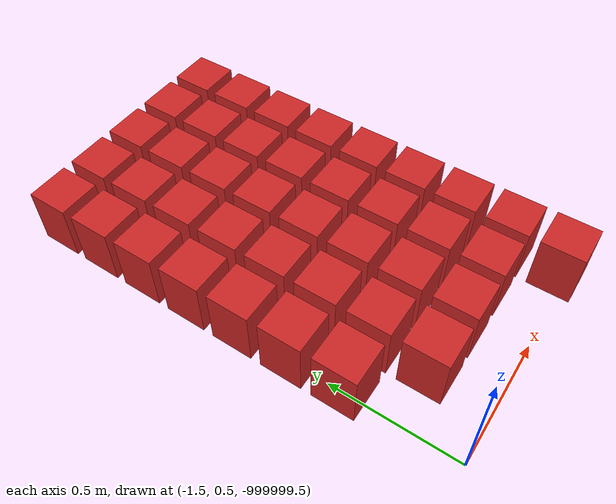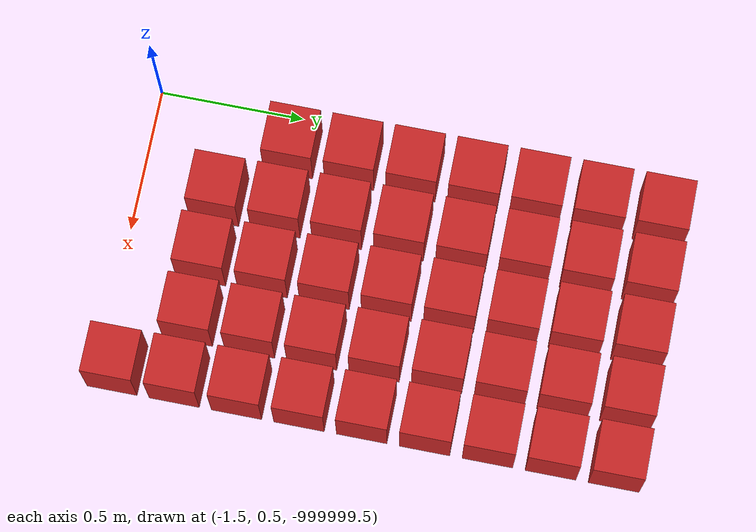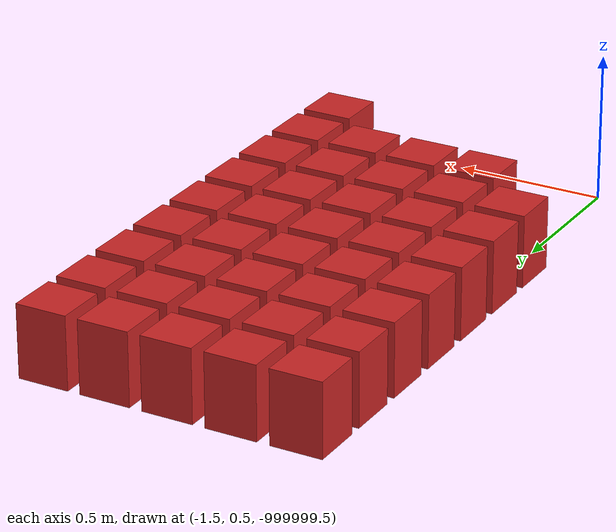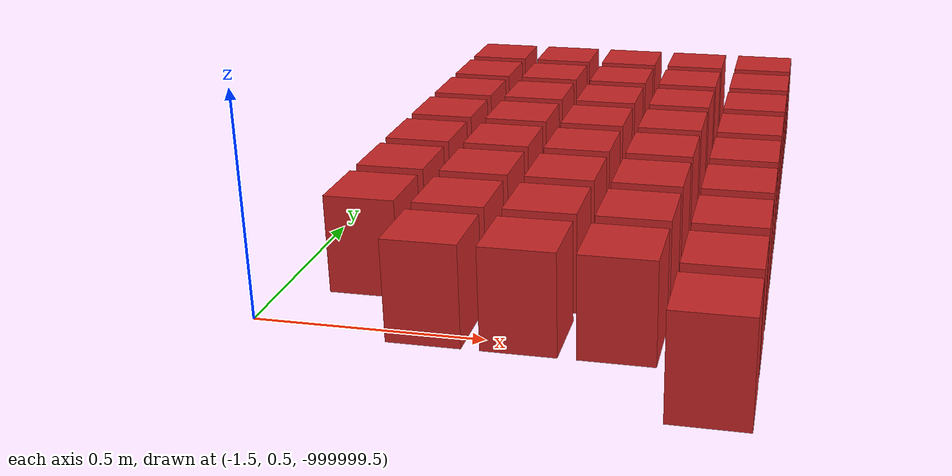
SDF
<sdf version="1.7">
 <world name="default">
  <model name="ground_plane">
   <static>1</static>
   <link name="link">
    <collision name="collision">
     <geometry><plane><normal>0 0 1</normal><size>100 100</size></plane></geometry>
     <surface>
      <contact><collide_bitmask>65535</collide_bitmask></contact>
      <friction><ode><mu>100</mu><mu2>50</mu2></ode></friction>
     </surface>
    </collision>
    <visual name="visual">
     <cast_shadows>0</cast_shadows>
     <geometry><plane><normal>0 0 1</normal><size>100 100</size></plane></geometry>
     <material>
      <script><uri>file://media/materials/scripts/gazebo.material</uri><name>Gazebo/Grey</name></script>
     </material>
    </visual>
   </link>
  </model>
  <model name="wall_331">
   <link name="link">
    <pose>0 0 0.5 0 -0 0</pose>
    <inertial>
     <mass>0.5167</mass>
     <inertia>
      <ixx>0.000861167</ixx>
      <ixy>0</ixy>
      <ixz>0</ixz>
      <iyy>0.000861167</iyy>
      <iyz>0</iyz>
      <izz>0.000861167</izz>
     </inertia>
    </inertial>
    <collision name="collision">
     <geometry><box><size>0.21 0.21 0.25</size></box></geometry>
     <surface>
      <contact>
       <poissons_ratio>0.347</poissons_ratio>
       <elastic_modulus>8.8e+09</elastic_modulus>
       <ode><kp>100000</kp><kd>100</kd><max_vel>100</max_vel><min_depth>0.001</min_depth></ode>
      </contact>
      <friction>
       <torsional>
        <coefficient>1</coefficient>
        <use_patch_radius>0</use_patch_radius>
        <surface_radius>0.01</surface_radius>
       </torsional>
      </friction>
     </surface>
    </collision>
    <visual name="visual">
     <geometry><box><size>0.175 0.175 0.25</size></box></geometry>
     <material>
      <script><uri>file://media/materials/scripts/gazebo.material</uri><name>Gazebo/Red</name></script>
     </material>
    </visual>
   </link>
   <pose>-0.543478 0.543478 -1e+06 0 -0 0</pose>
  </model>
  <model name="wall_351">
   <link name="link">
    <pose>0 0 0.5 0 -0 0</pose>
    <inertial>
     <mass>0.5167</mass>
     <inertia>
      <ixx>0.000861167</ixx>
      <ixy>0</ixy>
      <ixz>0</ixz>
      <iyy>0.000861167</iyy>
      <iyz>0</iyz>
      <izz>0.000861167</izz>
     </inertia>
    </inertial>
    <collision name="collision">
     <geometry><box><size>0.21 0.21 0.25</size></box></geometry>
     <surface>
      <contact>
       <poissons_ratio>0.347</poissons_ratio>
       <elastic_modulus>8.8e+09</elastic_modulus>
       <ode><kp>100000</kp><kd>100</kd><max_vel>100</max_vel><min_depth>0.001</min_depth></ode>
      </contact>
      <friction>
       <torsional>
        <coefficient>1</coefficient>
        <use_patch_radius>0</use_patch_radius>
        <surface_radius>0.01</surface_radius>
       </torsional>
      </friction>
     </surface>
    </collision>
    <visual name="visual">
     <geometry><box><size>0.175 0.175 0.25</size></box></geometry>
     <material>
      <script><uri>file://media/materials/scripts/gazebo.material</uri><name>Gazebo/Red</name></script>
     </material>
    </visual>
   </link>
   <pose>-1.19565 0.76087 -1e+06 0 -0 0</pose>
  </model>
  <model name="wall_352">
   <link name="link">
    <pose>0 0 0.5 0 -0 0</pose>
    <inertial>
     <mass>0.5167</mass>
     <inertia>
      <ixx>0.000861167</ixx>
      <ixy>0</ixy>
      <ixz>0</ixz>
      <iyy>0.000861167</iyy>
      <iyz>0</iyz>
      <izz>0.000861167</izz>
     </inertia>
    </inertial>
    <collision name="collision">
     <geometry><box><size>0.21 0.21 0.25</size></box></geometry>
     <surface>
      <contact>
       <poissons_ratio>0.347</poissons_ratio>
       <elastic_modulus>8.8e+09</elastic_modulus>
       <ode><kp>100000</kp><kd>100</kd><max_vel>100</max_vel><min_depth>0.001</min_depth></ode>
      </contact>
      <friction>
       <torsional>
        <coefficient>1</coefficient>
        <use_patch_radius>0</use_patch_radius>
        <surface_radius>0.01</surface_radius>
       </torsional>
      </friction>
     </surface>
    </collision>
    <visual name="visual">
     <geometry><box><size>0.175 0.175 0.25</size></box></geometry>
     <material>
      <script><uri>file://media/materials/scripts/gazebo.material</uri><name>Gazebo/Red</name></script>
     </material>
    </visual>
   </link>
   <pose>-0.978261 0.76087 -1e+06 0 -0 0</pose>
  </model>
  <model name="wall_353">
   <link name="link">
    <pose>0 0 0.5 0 -0 0</pose>
    <inertial>
     <mass>0.5167</mass>
     <inertia>
      <ixx>0.000861167</ixx>
      <ixy>0</ixy>
      <ixz>0</ixz>
      <iyy>0.000861167</iyy>
      <iyz>0</iyz>
      <izz>0.000861167</izz>
     </inertia>
    </inertial>
    <collision name="collision">
     <geometry><box><size>0.21 0.21 0.25</size></box></geometry>
     <surface>
      <contact>
       <poissons_ratio>0.347</poissons_ratio>
       <elastic_modulus>8.8e+09</elastic_modulus>
       <ode><kp>100000</kp><kd>100</kd><max_vel>100</max_vel><min_depth>0.001</min_depth></ode>
      </contact>
      <friction>
       <torsional>
        <coefficient>1</coefficient>
        <use_patch_radius>0</use_patch_radius>
        <surface_radius>0.01</surface_radius>
       </torsional>
      </friction>
     </surface>
    </collision>
    <visual name="visual">
     <geometry><box><size>0.175 0.175 0.25</size></box></geometry>
     <material>
      <script><uri>file://media/materials/scripts/gazebo.material</uri><name>Gazebo/Red</name></script>
     </material>
    </visual>
   </link>
   <pose>-0.76087 0.76087 -1e+06 0 -0 0</pose>
  </model>
  <model name="wall_354">
   <link name="link">
    <pose>0 0 0.5 0 -0 0</pose>
    <inertial>
     <mass>0.5167</mass>
     <inertia>
      <ixx>0.000861167</ixx>
      <ixy>0</ixy>
      <ixz>0</ixz>
      <iyy>0.000861167</iyy>
      <iyz>0</iyz>
      <izz>0.000861167</izz>
     </inertia>
    </inertial>
    <collision name="collision">
     <geometry><box><size>0.21 0.21 0.25</size></box></geometry>
     <surface>
      <contact>
       <poissons_ratio>0.347</poissons_ratio>
       <elastic_modulus>8.8e+09</elastic_modulus>
       <ode><kp>100000</kp><kd>100</kd><max_vel>100</max_vel><min_depth>0.001</min_depth></ode>
      </contact>
      <friction>
       <torsional>
        <coefficient>1</coefficient>
        <use_patch_radius>0</use_patch_radius>
        <surface_radius>0.01</surface_radius>
       </torsional>
      </friction>
     </surface>
    </collision>
    <visual name="visual">
     <geometry><box><size>0.175 0.175 0.25</size></box></geometry>
     <material>
      <script><uri>file://media/materials/scripts/gazebo.material</uri><name>Gazebo/Red</name></script>
     </material>
    </visual>
   </link>
   <pose>-0.543478 0.76087 -1e+06 0 -0 0</pose>
  </model>
  <model name="wall_373">
   <link name="link">
    <pose>0 0 0.5 0 -0 0</pose>
    <inertial>
     <mass>0.5167</mass>
     <inertia>
      <ixx>0.000861167</ixx>
      <ixy>0</ixy>
      <ixz>0</ixz>
      <iyy>0.000861167</iyy>
      <iyz>0</iyz>
      <izz>0.000861167</izz>
     </inertia>
    </inertial>
    <collision name="collision">
     <geometry><box><size>0.21 0.21 0.25</size></box></geometry>
     <surface>
      <contact>
       <poissons_ratio>0.347</poissons_ratio>
       <elastic_modulus>8.8e+09</elastic_modulus>
       <ode><kp>100000</kp><kd>100</kd><max_vel>100</max_vel><min_depth>0.001</min_depth></ode>
      </contact>
      <friction>
       <torsional>
        <coefficient>1</coefficient>
        <use_patch_radius>0</use_patch_radius>
        <surface_radius>0.01</surface_radius>
       </torsional>
      </friction>
     </surface>
    </collision>
    <visual name="visual">
     <geometry><box><size>0.175 0.175 0.25</size></box></geometry>
     <material>
      <script><uri>file://media/materials/scripts/gazebo.material</uri><name>Gazebo/Red</name></script>
     </material>
    </visual>
   </link>
   <pose>-1.41304 0.978261 -1e+06 0 -0 0</pose>
  </model>
  <model name="wall_374">
   <link name="link">
    <pose>0 0 0.5 0 -0 0</pose>
    <inertial>
     <mass>0.5167</mass>
     <inertia>
      <ixx>0.000861167</ixx>
      <ixy>0</ixy>
      <ixz>0</ixz>
      <iyy>0.000861167</iyy>
      <iyz>0</iyz>
      <izz>0.000861167</izz>
     </inertia>
    </inertial>
    <collision name="collision">
     <geometry><box><size>0.21 0.21 0.25</size></box></geometry>
     <surface>
      <contact>
       <poissons_ratio>0.347</poissons_ratio>
       <elastic_modulus>8.8e+09</elastic_modulus>
       <ode><kp>100000</kp><kd>100</kd><max_vel>100</max_vel><min_depth>0.001</min_depth></ode>
      </contact>
      <friction>
       <torsional>
        <coefficient>1</coefficient>
        <use_patch_radius>0</use_patch_radius>
        <surface_radius>0.01</surface_radius>
       </torsional>
      </friction>
     </surface>
    </collision>
    <visual name="visual">
     <geometry><box><size>0.175 0.175 0.25</size></box></geometry>
     <material>
      <script><uri>file://media/materials/scripts/gazebo.material</uri><name>Gazebo/Red</name></script>
     </material>
    </visual>
   </link>
   <pose>-1.19565 0.978261 -1e+06 0 -0 0</pose>
  </model>
  <model name="wall_375">
   <link name="link">
    <pose>0 0 0.5 0 -0 0</pose>
    <inertial>
     <mass>0.5167</mass>
     <inertia>
      <ixx>0.000861167</ixx>
      <ixy>0</ixy>
      <ixz>0</ixz>
      <iyy>0.000861167</iyy>
      <iyz>0</iyz>
      <izz>0.000861167</izz>
     </inertia>
    </inertial>
    <collision name="collision">
     <geometry><box><size>0.21 0.21 0.25</size></box></geometry>
     <surface>
      <contact>
       <poissons_ratio>0.347</poissons_ratio>
       <elastic_modulus>8.8e+09</elastic_modulus>
       <ode><kp>100000</kp><kd>100</kd><max_vel>100</max_vel><min_depth>0.001</min_depth></ode>
      </contact>
      <friction>
       <torsional>
        <coefficient>1</coefficient>
        <use_patch_radius>0</use_patch_radius>
        <surface_radius>0.01</surface_radius>
       </torsional>
      </friction>
     </surface>
    </collision>
    <visual name="visual">
     <geometry><box><size>0.175 0.175 0.25</size></box></geometry>
     <material>
      <script><uri>file://media/materials/scripts/gazebo.material</uri><name>Gazebo/Red</name></script>
     </material>
    </visual>
   </link>
   <pose>-0.978261 0.978261 -1e+06 0 -0 0</pose>
  </model>
  <model name="wall_376">
   <link name="link">
    <pose>0 0 0.5 0 -0 0</pose>
    <inertial>
     <mass>0.5167</mass>
     <inertia>
      <ixx>0.000861167</ixx>
      <ixy>0</ixy>
      <ixz>0</ixz>
      <iyy>0.000861167</iyy>
      <iyz>0</iyz>
      <izz>0.000861167</izz>
     </inertia>
    </inertial>
    <collision name="collision">
     <geometry><box><size>0.21 0.21 0.25</size></box></geometry>
     <surface>
      <contact>
       <poissons_ratio>0.347</poissons_ratio>
       <elastic_modulus>8.8e+09</elastic_modulus>
       <ode><kp>100000</kp><kd>100</kd><max_vel>100</max_vel><min_depth>0.001</min_depth></ode>
      </contact>
      <friction>
       <torsional>
        <coefficient>1</coefficient>
        <use_patch_radius>0</use_patch_radius>
        <surface_radius>0.01</surface_radius>
       </torsional>
      </friction>
     </surface>
    </collision>
    <visual name="visual">
     <geometry><box><size>0.175 0.175 0.25</size></box></geometry>
     <material>
      <script><uri>file://media/materials/scripts/gazebo.material</uri><name>Gazebo/Red</name></script>
     </material>
    </visual>
   </link>
   <pose>-0.76087 0.978261 -1e+06 0 -0 0</pose>
  </model>
  <model name="wall_377">
   <link name="link">
    <pose>0 0 0.5 0 -0 0</pose>
    <inertial>
     <mass>0.5167</mass>
     <inertia>
      <ixx>0.000861167</ixx>
      <ixy>0</ixy>
      <ixz>0</ixz>
      <iyy>0.000861167</iyy>
      <iyz>0</iyz>
      <izz>0.000861167</izz>
     </inertia>
    </inertial>
    <collision name="collision">
     <geometry><box><size>0.21 0.21 0.25</size></box></geometry>
     <surface>
      <contact>
       <poissons_ratio>0.347</poissons_ratio>
       <elastic_modulus>8.8e+09</elastic_modulus>
       <ode><kp>100000</kp><kd>100</kd><max_vel>100</max_vel><min_depth>0.001</min_depth></ode>
      </contact>
      <friction>
       <torsional>
        <coefficient>1</coefficient>
        <use_patch_radius>0</use_patch_radius>
        <surface_radius>0.01</surface_radius>
       </torsional>
      </friction>
     </surface>
    </collision>
    <visual name="visual">
     <geometry><box><size>0.175 0.175 0.25</size></box></geometry>
     <material>
      <script><uri>file://media/materials/scripts/gazebo.material</uri><name>Gazebo/Red</name></script>
     </material>
    </visual>
   </link>
   <pose>-0.543478 0.978261 -1e+06 0 -0 0</pose>
  </model>
  <model name="wall_396">
   <link name="link">
    <pose>0 0 0.5 0 -0 0</pose>
    <inertial>
     <mass>0.5167</mass>
     <inertia>
      <ixx>0.000861167</ixx>
      <ixy>0</ixy>
      <ixz>0</ixz>
      <iyy>0.000861167</iyy>
      <iyz>0</iyz>
      <izz>0.000861167</izz>
     </inertia>
    </inertial>
    <collision name="collision">
     <geometry><box><size>0.21 0.21 0.25</size></box></geometry>
     <surface>
      <contact>
       <poissons_ratio>0.347</poissons_ratio>
       <elastic_modulus>8.8e+09</elastic_modulus>
       <ode><kp>100000</kp><kd>100</kd><max_vel>100</max_vel><min_depth>0.001</min_depth></ode>
      </contact>
      <friction>
       <torsional>
        <coefficient>1</coefficient>
        <use_patch_radius>0</use_patch_radius>
        <surface_radius>0.01</surface_radius>
       </torsional>
      </friction>
     </surface>
    </collision>
    <visual name="visual">
     <geometry><box><size>0.175 0.175 0.25</size></box></geometry>
     <material>
      <script><uri>file://media/materials/scripts/gazebo.material</uri><name>Gazebo/Red</name></script>
     </material>
    </visual>
   </link>
   <pose>-1.41304 1.19565 -1e+06 0 -0 0</pose>
  </model>
  <model name="wall_397">
   <link name="link">
    <pose>0 0 0.5 0 -0 0</pose>
    <inertial>
     <mass>0.5167</mass>
     <inertia>
      <ixx>0.000861167</ixx>
      <ixy>0</ixy>
      <ixz>0</ixz>
      <iyy>0.000861167</iyy>
      <iyz>0</iyz>
      <izz>0.000861167</izz>
     </inertia>
    </inertial>
    <collision name="collision">
     <geometry><box><size>0.21 0.21 0.25</size></box></geometry>
     <surface>
      <contact>
       <poissons_ratio>0.347</poissons_ratio>
       <elastic_modulus>8.8e+09</elastic_modulus>
       <ode><kp>100000</kp><kd>100</kd><max_vel>100</max_vel><min_depth>0.001</min_depth></ode>
      </contact>
      <friction>
       <torsional>
        <coefficient>1</coefficient>
        <use_patch_radius>0</use_patch_radius>
        <surface_radius>0.01</surface_radius>
       </torsional>
      </friction>
     </surface>
    </collision>
    <visual name="visual">
     <geometry><box><size>0.175 0.175 0.25</size></box></geometry>
     <material>
      <script><uri>file://media/materials/scripts/gazebo.material</uri><name>Gazebo/Red</name></script>
     </material>
    </visual>
   </link>
   <pose>-1.19565 1.19565 -1e+06 0 -0 0</pose>
  </model>
  <model name="wall_398">
   <link name="link">
    <pose>0 0 0.5 0 -0 0</pose>
    <inertial>
     <mass>0.5167</mass>
     <inertia>
      <ixx>0.000861167</ixx>
      <ixy>0</ixy>
      <ixz>0</ixz>
      <iyy>0.000861167</iyy>
      <iyz>0</iyz>
      <izz>0.000861167</izz>
     </inertia>
    </inertial>
    <collision name="collision">
     <geometry><box><size>0.21 0.21 0.25</size></box></geometry>
     <surface>
      <contact>
       <poissons_ratio>0.347</poissons_ratio>
       <elastic_modulus>8.8e+09</elastic_modulus>
       <ode><kp>100000</kp><kd>100</kd><max_vel>100</max_vel><min_depth>0.001</min_depth></ode>
      </contact>
      <friction>
       <torsional>
        <coefficient>1</coefficient>
        <use_patch_radius>0</use_patch_radius>
        <surface_radius>0.01</surface_radius>
       </torsional>
      </friction>
     </surface>
    </collision>
    <visual name="visual">
     <geometry><box><size>0.175 0.175 0.25</size></box></geometry>
     <material>
      <script><uri>file://media/materials/scripts/gazebo.material</uri><name>Gazebo/Red</name></script>
     </material>
    </visual>
   </link>
   <pose>-0.978261 1.19565 -1e+06 0 -0 0</pose>
  </model>
  <model name="wall_399">
   <link name="link">
    <pose>0 0 0.5 0 -0 0</pose>
    <inertial>
     <mass>0.5167</mass>
     <inertia>
      <ixx>0.000861167</ixx>
      <ixy>0</ixy>
      <ixz>0</ixz>
      <iyy>0.000861167</iyy>
      <iyz>0</iyz>
      <izz>0.000861167</izz>
     </inertia>
    </inertial>
    <collision name="collision">
     <geometry><box><size>0.21 0.21 0.25</size></box></geometry>
     <surface>
      <contact>
       <poissons_ratio>0.347</poissons_ratio>
       <elastic_modulus>8.8e+09</elastic_modulus>
       <ode><kp>100000</kp><kd>100</kd><max_vel>100</max_vel><min_depth>0.001</min_depth></ode>
      </contact>
      <friction>
       <torsional>
        <coefficient>1</coefficient>
        <use_patch_radius>0</use_patch_radius>
        <surface_radius>0.01</surface_radius>
       </torsional>
      </friction>
     </surface>
    </collision>
    <visual name="visual">
     <geometry><box><size>0.175 0.175 0.25</size></box></geometry>
     <material>
      <script><uri>file://media/materials/scripts/gazebo.material</uri><name>Gazebo/Red</name></script>
     </material>
    </visual>
   </link>
   <pose>-0.76087 1.19565 -1e+06 0 -0 0</pose>
  </model>
  <model name="wall_400">
   <link name="link">
    <pose>0 0 0.5 0 -0 0</pose>
    <inertial>
     <mass>0.5167</mass>
     <inertia>
      <ixx>0.000861167</ixx>
      <ixy>0</ixy>
      <ixz>0</ixz>
      <iyy>0.000861167</iyy>
      <iyz>0</iyz>
      <izz>0.000861167</izz>
     </inertia>
    </inertial>
    <collision name="collision">
     <geometry><box><size>0.21 0.21 0.25</size></box></geometry>
     <surface>
      <contact>
       <poissons_ratio>0.347</poissons_ratio>
       <elastic_modulus>8.8e+09</elastic_modulus>
       <ode><kp>100000</kp><kd>100</kd><max_vel>100</max_vel><min_depth>0.001</min_depth></ode>
      </contact>
      <friction>
       <torsional>
        <coefficient>1</coefficient>
        <use_patch_radius>0</use_patch_radius>
        <surface_radius>0.01</surface_radius>
       </torsional>
      </friction>
     </surface>
    </collision>
    <visual name="visual">
     <geometry><box><size>0.175 0.175 0.25</size></box></geometry>
     <material>
      <script><uri>file://media/materials/scripts/gazebo.material</uri><name>Gazebo/Red</name></script>
     </material>
    </visual>
   </link>
   <pose>-0.543478 1.19565 -1e+06 0 -0 0</pose>
  </model>
  <model name="wall_419">
   <link name="link">
    <pose>0 0 0.5 0 -0 0</pose>
    <inertial>
     <mass>0.5167</mass>
     <inertia>
      <ixx>0.000861167</ixx>
      <ixy>0</ixy>
      <ixz>0</ixz>
      <iyy>0.000861167</iyy>
      <iyz>0</iyz>
      <izz>0.000861167</izz>
     </inertia>
    </inertial>
    <collision name="collision">
     <geometry><box><size>0.21 0.21 0.25</size></box></geometry>
     <surface>
      <contact>
       <poissons_ratio>0.347</poissons_ratio>
       <elastic_modulus>8.8e+09</elastic_modulus>
       <ode><kp>100000</kp><kd>100</kd><max_vel>100</max_vel><min_depth>0.001</min_depth></ode>
      </contact>
      <friction>
       <torsional>
        <coefficient>1</coefficient>
        <use_patch_radius>0</use_patch_radius>
        <surface_radius>0.01</surface_radius>
       </torsional>
      </friction>
     </surface>
    </collision>
    <visual name="visual">
     <geometry><box><size>0.175 0.175 0.25</size></box></geometry>
     <material>
      <script><uri>file://media/materials/scripts/gazebo.material</uri><name>Gazebo/Red</name></script>
     </material>
    </visual>
   </link>
   <pose>-1.41304 1.41304 -1e+06 0 -0 0</pose>
  </model>
  <model name="wall_420">
   <link name="link">
    <pose>0 0 0.5 0 -0 0</pose>
    <inertial>
     <mass>0.5167</mass>
     <inertia>
      <ixx>0.000861167</ixx>
      <ixy>0</ixy>
      <ixz>0</ixz>
      <iyy>0.000861167</iyy>
      <iyz>0</iyz>
      <izz>0.000861167</izz>
     </inertia>
    </inertial>
    <collision name="collision">
     <geometry><box><size>0.21 0.21 0.25</size></box></geometry>
     <surface>
      <contact>
       <poissons_ratio>0.347</poissons_ratio>
       <elastic_modulus>8.8e+09</elastic_modulus>
       <ode><kp>100000</kp><kd>100</kd><max_vel>100</max_vel><min_depth>0.001</min_depth></ode>
      </contact>
      <friction>
       <torsional>
        <coefficient>1</coefficient>
        <use_patch_radius>0</use_patch_radius>
        <surface_radius>0.01</surface_radius>
       </torsional>
      </friction>
     </surface>
    </collision>
    <visual name="visual">
     <geometry><box><size>0.175 0.175 0.25</size></box></geometry>
     <material>
      <script><uri>file://media/materials/scripts/gazebo.material</uri><name>Gazebo/Red</name></script>
     </material>
    </visual>
   </link>
   <pose>-1.19565 1.41304 -1e+06 0 -0 0</pose>
  </model>
  <model name="wall_421">
   <link name="link">
    <pose>0 0 0.5 0 -0 0</pose>
    <inertial>
     <mass>0.5167</mass>
     <inertia>
      <ixx>0.000861167</ixx>
      <ixy>0</ixy>
      <ixz>0</ixz>
      <iyy>0.000861167</iyy>
      <iyz>0</iyz>
      <izz>0.000861167</izz>
     </inertia>
    </inertial>
    <collision name="collision">
     <geometry><box><size>0.21 0.21 0.25</size></box></geometry>
     <surface>
      <contact>
       <poissons_ratio>0.347</poissons_ratio>
       <elastic_modulus>8.8e+09</elastic_modulus>
       <ode><kp>100000</kp><kd>100</kd><max_vel>100</max_vel><min_depth>0.001</min_depth></ode>
      </contact>
      <friction>
       <torsional>
        <coefficient>1</coefficient>
        <use_patch_radius>0</use_patch_radius>
        <surface_radius>0.01</surface_radius>
       </torsional>
      </friction>
     </surface>
    </collision>
    <visual name="visual">
     <geometry><box><size>0.175 0.175 0.25</size></box></geometry>
     <material>
      <script><uri>file://media/materials/scripts/gazebo.material</uri><name>Gazebo/Red</name></script>
     </material>
    </visual>
   </link>
   <pose>-0.978261 1.41304 -1e+06 0 -0 0</pose>
  </model>
  <model name="wall_422">
   <link name="link">
    <pose>0 0 0.5 0 -0 0</pose>
    <inertial>
     <mass>0.5167</mass>
     <inertia>
      <ixx>0.000861167</ixx>
      <ixy>0</ixy>
      <ixz>0</ixz>
      <iyy>0.000861167</iyy>
      <iyz>0</iyz>
      <izz>0.000861167</izz>
     </inertia>
    </inertial>
    <collision name="collision">
     <geometry><box><size>0.21 0.21 0.25</size></box></geometry>
     <surface>
      <contact>
       <poissons_ratio>0.347</poissons_ratio>
       <elastic_modulus>8.8e+09</elastic_modulus>
       <ode><kp>100000</kp><kd>100</kd><max_vel>100</max_vel><min_depth>0.001</min_depth></ode>
      </contact>
      <friction>
       <torsional>
        <coefficient>1</coefficient>
        <use_patch_radius>0</use_patch_radius>
        <surface_radius>0.01</surface_radius>
       </torsional>
      </friction>
     </surface>
    </collision>
    <visual name="visual">
     <geometry><box><size>0.175 0.175 0.25</size></box></geometry>
     <material>
      <script><uri>file://media/materials/scripts/gazebo.material</uri><name>Gazebo/Red</name></script>
     </material>
    </visual>
   </link>
   <pose>-0.76087 1.41304 -1e+06 0 -0 0</pose>
  </model>
  <model name="wall_423">
   <link name="link">
    <pose>0 0 0.5 0 -0 0</pose>
    <inertial>
     <mass>0.5167</mass>
     <inertia>
      <ixx>0.000861167</ixx>
      <ixy>0</ixy>
      <ixz>0</ixz>
      <iyy>0.000861167</iyy>
      <iyz>0</iyz>
      <izz>0.000861167</izz>
     </inertia>
    </inertial>
    <collision name="collision">
     <geometry><box><size>0.21 0.21 0.25</size></box></geometry>
     <surface>
      <contact>
       <poissons_ratio>0.347</poissons_ratio>
       <elastic_modulus>8.8e+09</elastic_modulus>
       <ode><kp>100000</kp><kd>100</kd><max_vel>100</max_vel><min_depth>0.001</min_depth></ode>
      </contact>
      <friction>
       <torsional>
        <coefficient>1</coefficient>
        <use_patch_radius>0</use_patch_radius>
        <surface_radius>0.01</surface_radius>
       </torsional>
      </friction>
     </surface>
    </collision>
    <visual name="visual">
     <geometry><box><size>0.175 0.175 0.25</size></box></geometry>
     <material>
      <script><uri>file://media/materials/scripts/gazebo.material</uri><name>Gazebo/Red</name></script>
     </material>
    </visual>
   </link>
   <pose>-0.543478 1.41304 -1e+06 0 -0 0</pose>
  </model>
  <model name="wall_442">
   <link name="link">
    <pose>0 0 0.5 0 -0 0</pose>
    <inertial>
     <mass>0.5167</mass>
     <inertia>
      <ixx>0.000861167</ixx>
      <ixy>0</ixy>
      <ixz>0</ixz>
      <iyy>0.000861167</iyy>
      <iyz>0</iyz>
      <izz>0.000861167</izz>
     </inertia>
    </inertial>
    <collision name="collision">
     <geometry><box><size>0.21 0.21 0.25</size></box></geometry>
     <surface>
      <contact>
       <poissons_ratio>0.347</poissons_ratio>
       <elastic_modulus>8.8e+09</elastic_modulus>
       <ode><kp>100000</kp><kd>100</kd><max_vel>100</max_vel><min_depth>0.001</min_depth></ode>
      </contact>
      <friction>
       <torsional>
        <coefficient>1</coefficient>
        <use_patch_radius>0</use_patch_radius>
        <surface_radius>0.01</surface_radius>
       </torsional>
      </friction>
     </surface>
    </collision>
    <visual name="visual">
     <geometry><box><size>0.175 0.175 0.25</size></box></geometry>
     <material>
      <script><uri>file://media/materials/scripts/gazebo.material</uri><name>Gazebo/Red</name></script>
     </material>
    </visual>
   </link>
   <pose>-1.41304 1.63043 -1e+06 0 -0 0</pose>
  </model>
  <model name="wall_443">
   <link name="link">
    <pose>0 0 0.5 0 -0 0</pose>
    <inertial>
     <mass>0.5167</mass>
     <inertia>
      <ixx>0.000861167</ixx>
      <ixy>0</ixy>
      <ixz>0</ixz>
      <iyy>0.000861167</iyy>
      <iyz>0</iyz>
      <izz>0.000861167</izz>
     </inertia>
    </inertial>
    <collision name="collision">
     <geometry><box><size>0.21 0.21 0.25</size></box></geometry>
     <surface>
      <contact>
       <poissons_ratio>0.347</poissons_ratio>
       <elastic_modulus>8.8e+09</elastic_modulus>
       <ode><kp>100000</kp><kd>100</kd><max_vel>100</max_vel><min_depth>0.001</min_depth></ode>
      </contact>
      <friction>
       <torsional>
        <coefficient>1</coefficient>
        <use_patch_radius>0</use_patch_radius>
        <surface_radius>0.01</surface_radius>
       </torsional>
      </friction>
     </surface>
    </collision>
    <visual name="visual">
     <geometry><box><size>0.175 0.175 0.25</size></box></geometry>
     <material>
      <script><uri>file://media/materials/scripts/gazebo.material</uri><name>Gazebo/Red</name></script>
     </material>
    </visual>
   </link>
   <pose>-1.19565 1.63043 -1e+06 0 -0 0</pose>
  </model>
  <model name="wall_444">
   <link name="link">
    <pose>0 0 0.5 0 -0 0</pose>
    <inertial>
     <mass>0.5167</mass>
     <inertia>
      <ixx>0.000861167</ixx>
      <ixy>0</ixy>
      <ixz>0</ixz>
      <iyy>0.000861167</iyy>
      <iyz>0</iyz>
      <izz>0.000861167</izz>
     </inertia>
    </inertial>
    <collision name="collision">
     <geometry><box><size>0.21 0.21 0.25</size></box></geometry>
     <surface>
      <contact>
       <poissons_ratio>0.347</poissons_ratio>
       <elastic_modulus>8.8e+09</elastic_modulus>
       <ode><kp>100000</kp><kd>100</kd><max_vel>100</max_vel><min_depth>0.001</min_depth></ode>
      </contact>
      <friction>
       <torsional>
        <coefficient>1</coefficient>
        <use_patch_radius>0</use_patch_radius>
        <surface_radius>0.01</surface_radius>
       </torsional>
      </friction>
     </surface>
    </collision>
    <visual name="visual">
     <geometry><box><size>0.175 0.175 0.25</size></box></geometry>
     <material>
      <script><uri>file://media/materials/scripts/gazebo.material</uri><name>Gazebo/Red</name></script>
     </material>
    </visual>
   </link>
   <pose>-0.978261 1.63043 -1e+06 0 -0 0</pose>
  </model>
  <model name="wall_445">
   <link name="link">
    <pose>0 0 0.5 0 -0 0</pose>
    <inertial>
     <mass>0.5167</mass>
     <inertia>
      <ixx>0.000861167</ixx>
      <ixy>0</ixy>
      <ixz>0</ixz>
      <iyy>0.000861167</iyy>
      <iyz>0</iyz>
      <izz>0.000861167</izz>
     </inertia>
    </inertial>
    <collision name="collision">
     <geometry><box><size>0.21 0.21 0.25</size></box></geometry>
     <surface>
      <contact>
       <poissons_ratio>0.347</poissons_ratio>
       <elastic_modulus>8.8e+09</elastic_modulus>
       <ode><kp>100000</kp><kd>100</kd><max_vel>100</max_vel><min_depth>0.001</min_depth></ode>
      </contact>
      <friction>
       <torsional>
        <coefficient>1</coefficient>
        <use_patch_radius>0</use_patch_radius>
        <surface_radius>0.01</surface_radius>
       </torsional>
      </friction>
     </surface>
    </collision>
    <visual name="visual">
     <geometry><box><size>0.175 0.175 0.25</size></box></geometry>
     <material>
      <script><uri>file://media/materials/scripts/gazebo.material</uri><name>Gazebo/Red</name></script>
     </material>
    </visual>
   </link>
   <pose>-0.76087 1.63043 -1e+06 0 -0 0</pose>
  </model>
  <model name="wall_446">
   <link name="link">
    <pose>0 0 0.5 0 -0 0</pose>
    <inertial>
     <mass>0.5167</mass>
     <inertia>
      <ixx>0.000861167</ixx>
      <ixy>0</ixy>
      <ixz>0</ixz>
      <iyy>0.000861167</iyy>
      <iyz>0</iyz>
      <izz>0.000861167</izz>
     </inertia>
    </inertial>
    <collision name="collision">
     <geometry><box><size>0.21 0.21 0.25</size></box></geometry>
     <surface>
      <contact>
       <poissons_ratio>0.347</poissons_ratio>
       <elastic_modulus>8.8e+09</elastic_modulus>
       <ode><kp>100000</kp><kd>100</kd><max_vel>100</max_vel><min_depth>0.001</min_depth></ode>
      </contact>
      <friction>
       <torsional>
        <coefficient>1</coefficient>
        <use_patch_radius>0</use_patch_radius>
        <surface_radius>0.01</surface_radius>
       </torsional>
      </friction>
     </surface>
    </collision>
    <visual name="visual">
     <geometry><box><size>0.175 0.175 0.25</size></box></geometry>
     <material>
      <script><uri>file://media/materials/scripts/gazebo.material</uri><name>Gazebo/Red</name></script>
     </material>
    </visual>
   </link>
   <pose>-0.543478 1.63043 -1e+06 0 -0 0</pose>
  </model>
  <model name="wall_465">
   <link name="link">
    <pose>0 0 0.5 0 -0 0</pose>
    <inertial>
     <mass>0.5167</mass>
     <inertia>
      <ixx>0.000861167</ixx>
      <ixy>0</ixy>
      <ixz>0</ixz>
      <iyy>0.000861167</iyy>
      <iyz>0</iyz>
      <izz>0.000861167</izz>
     </inertia>
    </inertial>
    <collision name="collision">
     <geometry><box><size>0.21 0.21 0.25</size></box></geometry>
     <surface>
      <contact>
       <poissons_ratio>0.347</poissons_ratio>
       <elastic_modulus>8.8e+09</elastic_modulus>
       <ode><kp>100000</kp><kd>100</kd><max_vel>100</max_vel><min_depth>0.001</min_depth></ode>
      </contact>
      <friction>
       <torsional>
        <coefficient>1</coefficient>
        <use_patch_radius>0</use_patch_radius>
        <surface_radius>0.01</surface_radius>
       </torsional>
      </friction>
     </surface>
    </collision>
    <visual name="visual">
     <geometry><box><size>0.175 0.175 0.25</size></box></geometry>
     <material>
      <script><uri>file://media/materials/scripts/gazebo.material</uri><name>Gazebo/Red</name></script>
     </material>
    </visual>
   </link>
   <pose>-1.41304 1.84783 -1e+06 0 -0 0</pose>
  </model>
  <model name="wall_466">
   <link name="link">
    <pose>0 0 0.5 0 -0 0</pose>
    <inertial>
     <mass>0.5167</mass>
     <inertia>
      <ixx>0.000861167</ixx>
      <ixy>0</ixy>
      <ixz>0</ixz>
      <iyy>0.000861167</iyy>
      <iyz>0</iyz>
      <izz>0.000861167</izz>
     </inertia>
    </inertial>
    <collision name="collision">
     <geometry><box><size>0.21 0.21 0.25</size></box></geometry>
     <surface>
      <contact>
       <poissons_ratio>0.347</poissons_ratio>
       <elastic_modulus>8.8e+09</elastic_modulus>
       <ode><kp>100000</kp><kd>100</kd><max_vel>100</max_vel><min_depth>0.001</min_depth></ode>
      </contact>
      <friction>
       <torsional>
        <coefficient>1</coefficient>
        <use_patch_radius>0</use_patch_radius>
        <surface_radius>0.01</surface_radius>
       </torsional>
      </friction>
     </surface>
    </collision>
    <visual name="visual">
     <geometry><box><size>0.175 0.175 0.25</size></box></geometry>
     <material>
      <script><uri>file://media/materials/scripts/gazebo.material</uri><name>Gazebo/Red</name></script>
     </material>
    </visual>
   </link>
   <pose>-1.19565 1.84783 -1e+06 0 -0 0</pose>
  </model>
  <model name="wall_467">
   <link name="link">
    <pose>0 0 0.5 0 -0 0</pose>
    <inertial>
     <mass>0.5167</mass>
     <inertia>
      <ixx>0.000861167</ixx>
      <ixy>0</ixy>
      <ixz>0</ixz>
      <iyy>0.000861167</iyy>
      <iyz>0</iyz>
      <izz>0.000861167</izz>
     </inertia>
    </inertial>
    <collision name="collision">
     <geometry><box><size>0.21 0.21 0.25</size></box></geometry>
     <surface>
      <contact>
       <poissons_ratio>0.347</poissons_ratio>
       <elastic_modulus>8.8e+09</elastic_modulus>
       <ode><kp>100000</kp><kd>100</kd><max_vel>100</max_vel><min_depth>0.001</min_depth></ode>
      </contact>
      <friction>
       <torsional>
        <coefficient>1</coefficient>
        <use_patch_radius>0</use_patch_radius>
        <surface_radius>0.01</surface_radius>
       </torsional>
      </friction>
     </surface>
    </collision>
    <visual name="visual">
     <geometry><box><size>0.175 0.175 0.25</size></box></geometry>
     <material>
      <script><uri>file://media/materials/scripts/gazebo.material</uri><name>Gazebo/Red</name></script>
     </material>
    </visual>
   </link>
   <pose>-0.978261 1.84783 -1e+06 0 -0 0</pose>
  </model>
  <model name="wall_468">
   <link name="link">
    <pose>0 0 0.5 0 -0 0</pose>
    <inertial>
     <mass>0.5167</mass>
     <inertia>
      <ixx>0.000861167</ixx>
      <ixy>0</ixy>
      <ixz>0</ixz>
      <iyy>0.000861167</iyy>
      <iyz>0</iyz>
      <izz>0.000861167</izz>
     </inertia>
    </inertial>
    <collision name="collision">
     <geometry><box><size>0.21 0.21 0.25</size></box></geometry>
     <surface>
      <contact>
       <poissons_ratio>0.347</poissons_ratio>
       <elastic_modulus>8.8e+09</elastic_modulus>
       <ode><kp>100000</kp><kd>100</kd><max_vel>100</max_vel><min_depth>0.001</min_depth></ode>
      </contact>
      <friction>
       <torsional>
        <coefficient>1</coefficient>
        <use_patch_radius>0</use_patch_radius>
        <surface_radius>0.01</surface_radius>
       </torsional>
      </friction>
     </surface>
    </collision>
    <visual name="visual">
     <geometry><box><size>0.175 0.175 0.25</size></box></geometry>
     <material>
      <script><uri>file://media/materials/scripts/gazebo.material</uri><name>Gazebo/Red</name></script>
     </material>
    </visual>
   </link>
   <pose>-0.76087 1.84783 -1e+06 0 -0 0</pose>
  </model>
  <model name="wall_469">
   <link name="link">
    <pose>0 0 0.5 0 -0 0</pose>
    <inertial>
     <mass>0.5167</mass>
     <inertia>
      <ixx>0.000861167</ixx>
      <ixy>0</ixy>
      <ixz>0</ixz>
      <iyy>0.000861167</iyy>
      <iyz>0</iyz>
      <izz>0.000861167</izz>
     </inertia>
    </inertial>
    <collision name="collision">
     <geometry><box><size>0.21 0.21 0.25</size></box></geometry>
     <surface>
      <contact>
       <poissons_ratio>0.347</poissons_ratio>
       <elastic_modulus>8.8e+09</elastic_modulus>
       <ode><kp>100000</kp><kd>100</kd><max_vel>100</max_vel><min_depth>0.001</min_depth></ode>
      </contact>
      <friction>
       <torsional>
        <coefficient>1</coefficient>
        <use_patch_radius>0</use_patch_radius>
        <surface_radius>0.01</surface_radius>
       </torsional>
      </friction>
     </surface>
    </collision>
    <visual name="visual">
     <geometry><box><size>0.175 0.175 0.25</size></box></geometry>
     <material>
      <script><uri>file://media/materials/scripts/gazebo.material</uri><name>Gazebo/Red</name></script>
     </material>
    </visual>
   </link>
   <pose>-0.543478 1.84783 -1e+06 0 -0 0</pose>
  </model>
  <model name="wall_488">
   <link name="link">
    <pose>0 0 0.5 0 -0 0</pose>
    <inertial>
     <mass>0.5167</mass>
     <inertia>
      <ixx>0.000861167</ixx>
      <ixy>0</ixy>
      <ixz>0</ixz>
      <iyy>0.000861167</iyy>
      <iyz>0</iyz>
      <izz>0.000861167</izz>
     </inertia>
    </inertial>
    <collision name="collision">
     <geometry><box><size>0.21 0.21 0.25</size></box></geometry>
     <surface>
      <contact>
       <poissons_ratio>0.347</poissons_ratio>
       <elastic_modulus>8.8e+09</elastic_modulus>
       <ode><kp>100000</kp><kd>100</kd><max_vel>100</max_vel><min_depth>0.001</min_depth></ode>
      </contact>
      <friction>
       <torsional>
        <coefficient>1</coefficient>
        <use_patch_radius>0</use_patch_radius>
        <surface_radius>0.01</surface_radius>
       </torsional>
      </friction>
     </surface>
    </collision>
    <visual name="visual">
     <geometry><box><size>0.175 0.175 0.25</size></box></geometry>
     <material>
      <script><uri>file://media/materials/scripts/gazebo.material</uri><name>Gazebo/Red</name></script>
     </material>
    </visual>
   </link>
   <pose>-1.41304 2.06522 -1e+06 0 -0 0</pose>
  </model>
  <model name="wall_489">
   <link name="link">
    <pose>0 0 0.5 0 -0 0</pose>
    <inertial>
     <mass>0.5167</mass>
     <inertia>
      <ixx>0.000861167</ixx>
      <ixy>0</ixy>
      <ixz>0</ixz>
      <iyy>0.000861167</iyy>
      <iyz>0</iyz>
      <izz>0.000861167</izz>
     </inertia>
    </inertial>
    <collision name="collision">
     <geometry><box><size>0.21 0.21 0.25</size></box></geometry>
     <surface>
      <contact>
       <poissons_ratio>0.347</poissons_ratio>
       <elastic_modulus>8.8e+09</elastic_modulus>
       <ode><kp>100000</kp><kd>100</kd><max_vel>100</max_vel><min_depth>0.001</min_depth></ode>
      </contact>
      <friction>
       <torsional>
        <coefficient>1</coefficient>
        <use_patch_radius>0</use_patch_radius>
        <surface_radius>0.01</surface_radius>
       </torsional>
      </friction>
     </surface>
    </collision>
    <visual name="visual">
     <geometry><box><size>0.175 0.175 0.25</size></box></geometry>
     <material>
      <script><uri>file://media/materials/scripts/gazebo.material</uri><name>Gazebo/Red</name></script>
     </material>
    </visual>
   </link>
   <pose>-1.19565 2.06522 -1e+06 0 -0 0</pose>
  </model>
  <model name="wall_490">
   <link name="link">
    <pose>0 0 0.5 0 -0 0</pose>
    <inertial>
     <mass>0.5167</mass>
     <inertia>
      <ixx>0.000861167</ixx>
      <ixy>0</ixy>
      <ixz>0</ixz>
      <iyy>0.000861167</iyy>
      <iyz>0</iyz>
      <izz>0.000861167</izz>
     </inertia>
    </inertial>
    <collision name="collision">
     <geometry><box><size>0.21 0.21 0.25</size></box></geometry>
     <surface>
      <contact>
       <poissons_ratio>0.347</poissons_ratio>
       <elastic_modulus>8.8e+09</elastic_modulus>
       <ode><kp>100000</kp><kd>100</kd><max_vel>100</max_vel><min_depth>0.001</min_depth></ode>
      </contact>
      <friction>
       <torsional>
        <coefficient>1</coefficient>
        <use_patch_radius>0</use_patch_radius>
        <surface_radius>0.01</surface_radius>
       </torsional>
      </friction>
     </surface>
    </collision>
    <visual name="visual">
     <geometry><box><size>0.175 0.175 0.25</size></box></geometry>
     <material>
      <script><uri>file://media/materials/scripts/gazebo.material</uri><name>Gazebo/Red</name></script>
     </material>
    </visual>
   </link>
   <pose>-0.978261 2.06522 -1e+06 0 -0 0</pose>
  </model>
  <model name="wall_491">
   <link name="link">
    <pose>0 0 0.5 0 -0 0</pose>
    <inertial>
     <mass>0.5167</mass>
     <inertia>
      <ixx>0.000861167</ixx>
      <ixy>0</ixy>
      <ixz>0</ixz>
      <iyy>0.000861167</iyy>
      <iyz>0</iyz>
      <izz>0.000861167</izz>
     </inertia>
    </inertial>
    <collision name="collision">
     <geometry><box><size>0.21 0.21 0.25</size></box></geometry>
     <surface>
      <contact>
       <poissons_ratio>0.347</poissons_ratio>
       <elastic_modulus>8.8e+09</elastic_modulus>
       <ode><kp>100000</kp><kd>100</kd><max_vel>100</max_vel><min_depth>0.001</min_depth></ode>
      </contact>
      <friction>
       <torsional>
        <coefficient>1</coefficient>
        <use_patch_radius>0</use_patch_radius>
        <surface_radius>0.01</surface_radius>
       </torsional>
      </friction>
     </surface>
    </collision>
    <visual name="visual">
     <geometry><box><size>0.175 0.175 0.25</size></box></geometry>
     <material>
      <script><uri>file://media/materials/scripts/gazebo.material</uri><name>Gazebo/Red</name></script>
     </material>
    </visual>
   </link>
   <pose>-0.76087 2.06522 -1e+06 0 -0 0</pose>
  </model>
  <model name="wall_492">
   <link name="link">
    <pose>0 0 0.5 0 -0 0</pose>
    <inertial>
     <mass>0.5167</mass>
     <inertia>
      <ixx>0.000861167</ixx>
      <ixy>0</ixy>
      <ixz>0</ixz>
      <iyy>0.000861167</iyy>
      <iyz>0</iyz>
      <izz>0.000861167</izz>
     </inertia>
    </inertial>
    <collision name="collision">
     <geometry><box><size>0.21 0.21 0.25</size></box></geometry>
     <surface>
      <contact>
       <poissons_ratio>0.347</poissons_ratio>
       <elastic_modulus>8.8e+09</elastic_modulus>
       <ode><kp>100000</kp><kd>100</kd><max_vel>100</max_vel><min_depth>0.001</min_depth></ode>
      </contact>
      <friction>
       <torsional>
        <coefficient>1</coefficient>
        <use_patch_radius>0</use_patch_radius>
        <surface_radius>0.01</surface_radius>
       </torsional>
      </friction>
     </surface>
    </collision>
    <visual name="visual">
     <geometry><box><size>0.175 0.175 0.25</size></box></geometry>
     <material>
      <script><uri>file://media/materials/scripts/gazebo.material</uri><name>Gazebo/Red</name></script>
     </material>
    </visual>
   </link>
   <pose>-0.543478 2.06522 -1e+06 0 -0 0</pose>
  </model>
  <model name="wall_511">
   <link name="link">
    <pose>0 0 0.5 0 -0 0</pose>
    <inertial>
     <mass>0.5167</mass>
     <inertia>
      <ixx>0.000861167</ixx>
      <ixy>0</ixy>
      <ixz>0</ixz>
      <iyy>0.000861167</iyy>
      <iyz>0</iyz>
      <izz>0.000861167</izz>
     </inertia>
    </inertial>
    <collision name="collision">
     <geometry><box><size>0.21 0.21 0.25</size></box></geometry>
     <surface>
      <contact>
       <poissons_ratio>0.347</poissons_ratio>
       <elastic_modulus>8.8e+09</elastic_modulus>
       <ode><kp>100000</kp><kd>100</kd><max_vel>100</max_vel><min_depth>0.001</min_depth></ode>
      </contact>
      <friction>
       <torsional>
        <coefficient>1</coefficient>
        <use_patch_radius>0</use_patch_radius>
        <surface_radius>0.01</surface_radius>
       </torsional>
      </friction>
     </surface>
    </collision>
    <visual name="visual">
     <geometry><box><size>0.175 0.175 0.25</size></box></geometry>
     <material>
      <script><uri>file://media/materials/scripts/gazebo.material</uri><name>Gazebo/Red</name></script>
     </material>
    </visual>
   </link>
   <pose>-1.41304 2.28261 -1e+06 0 -0 0</pose>
  </model>
  <model name="wall_512">
   <link name="link">
    <pose>0 0 0.5 0 -0 0</pose>
    <inertial>
     <mass>0.5167</mass>
     <inertia>
      <ixx>0.000861167</ixx>
      <ixy>0</ixy>
      <ixz>0</ixz>
      <iyy>0.000861167</iyy>
      <iyz>0</iyz>
      <izz>0.000861167</izz>
     </inertia>
    </inertial>
    <collision name="collision">
     <geometry><box><size>0.21 0.21 0.25</size></box></geometry>
     <surface>
      <contact>
       <poissons_ratio>0.347</poissons_ratio>
       <elastic_modulus>8.8e+09</elastic_modulus>
       <ode><kp>100000</kp><kd>100</kd><max_vel>100</max_vel><min_depth>0.001</min_depth></ode>
      </contact>
      <friction>
       <torsional>
        <coefficient>1</coefficient>
        <use_patch_radius>0</use_patch_radius>
        <surface_radius>0.01</surface_radius>
       </torsional>
      </friction>
     </surface>
    </collision>
    <visual name="visual">
     <geometry><box><size>0.175 0.175 0.25</size></box></geometry>
     <material>
      <script><uri>file://media/materials/scripts/gazebo.material</uri><name>Gazebo/Red</name></script>
     </material>
    </visual>
   </link>
   <pose>-1.19565 2.28261 -1e+06 0 -0 0</pose>
  </model>
  <model name="wall_513">
   <link name="link">
    <pose>0 0 0.5 0 -0 0</pose>
    <inertial>
     <mass>0.5167</mass>
     <inertia>
      <ixx>0.000861167</ixx>
      <ixy>0</ixy>
      <ixz>0</ixz>
      <iyy>0.000861167</iyy>
      <iyz>0</iyz>
      <izz>0.000861167</izz>
     </inertia>
    </inertial>
    <collision name="collision">
     <geometry><box><size>0.21 0.21 0.25</size></box></geometry>
     <surface>
      <contact>
       <poissons_ratio>0.347</poissons_ratio>
       <elastic_modulus>8.8e+09</elastic_modulus>
       <ode><kp>100000</kp><kd>100</kd><max_vel>100</max_vel><min_depth>0.001</min_depth></ode>
      </contact>
      <friction>
       <torsional>
        <coefficient>1</coefficient>
        <use_patch_radius>0</use_patch_radius>
        <surface_radius>0.01</surface_radius>
       </torsional>
      </friction>
     </surface>
    </collision>
    <visual name="visual">
     <geometry><box><size>0.175 0.175 0.25</size></box></geometry>
     <material>
      <script><uri>file://media/materials/scripts/gazebo.material</uri><name>Gazebo/Red</name></script>
     </material>
    </visual>
   </link>
   <pose>-0.978261 2.28261 -1e+06 0 -0 0</pose>
  </model>
  <model name="wall_514">
   <link name="link">
    <pose>0 0 0.5 0 -0 0</pose>
    <inertial>
     <mass>0.5167</mass>
     <inertia>
      <ixx>0.000861167</ixx>
      <ixy>0</ixy>
      <ixz>0</ixz>
      <iyy>0.000861167</iyy>
      <iyz>0</iyz>
      <izz>0.000861167</izz>
     </inertia>
    </inertial>
    <collision name="collision">
     <geometry><box><size>0.21 0.21 0.25</size></box></geometry>
     <surface>
      <contact>
       <poissons_ratio>0.347</poissons_ratio>
       <elastic_modulus>8.8e+09</elastic_modulus>
       <ode><kp>100000</kp><kd>100</kd><max_vel>100</max_vel><min_depth>0.001</min_depth></ode>
      </contact>
      <friction>
       <torsional>
        <coefficient>1</coefficient>
        <use_patch_radius>0</use_patch_radius>
        <surface_radius>0.01</surface_radius>
       </torsional>
      </friction>
     </surface>
    </collision>
    <visual name="visual">
     <geometry><box><size>0.175 0.175 0.25</size></box></geometry>
     <material>
      <script><uri>file://media/materials/scripts/gazebo.material</uri><name>Gazebo/Red</name></script>
     </material>
    </visual>
   </link>
   <pose>-0.76087 2.28261 -1e+06 0 -0 0</pose>
  </model>
  <model name="wall_515">
   <link name="link">
    <pose>0 0 0.5 0 -0 0</pose>
    <inertial>
     <mass>0.5167</mass>
     <inertia>
      <ixx>0.000861167</ixx>
      <ixy>0</ixy>
      <ixz>0</ixz>
      <iyy>0.000861167</iyy>
      <iyz>0</iyz>
      <izz>0.000861167</izz>
     </inertia>
    </inertial>
    <collision name="collision">
     <geometry><box><size>0.21 0.21 0.25</size></box></geometry>
     <surface>
      <contact>
       <poissons_ratio>0.347</poissons_ratio>
       <elastic_modulus>8.8e+09</elastic_modulus>
       <ode><kp>100000</kp><kd>100</kd><max_vel>100</max_vel><min_depth>0.001</min_depth></ode>
      </contact>
      <friction>
       <torsional>
        <coefficient>1</coefficient>
        <use_patch_radius>0</use_patch_radius>
        <surface_radius>0.01</surface_radius>
       </torsional>
      </friction>
     </surface>
    </collision>
    <visual name="visual">
     <geometry><box><size>0.175 0.175 0.25</size></box></geometry>
     <material>
      <script><uri>file://media/materials/scripts/gazebo.material</uri><name>Gazebo/Red</name></script>
     </material>
    </visual>
   </link>
   <pose>-0.543478 2.28261 -1e+06 0 -0 0</pose>
  </model>
 </world>
</sdf>
